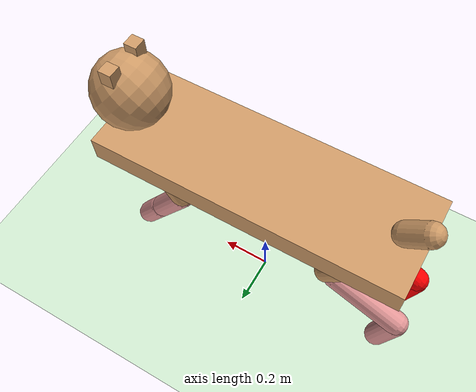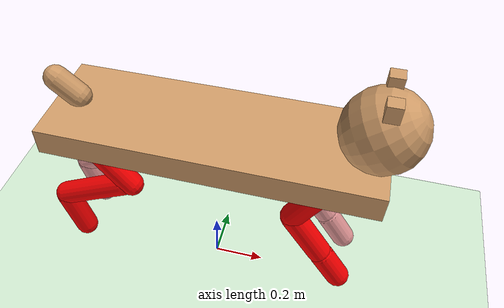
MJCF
<mujoco model="cheetah">
  <compiler angle="radian" coordinate="local" inertiafromgeom="true"/>
  <default>
    <joint armature=".1" damping=".01" limited="true" solimplimit="0 .8 .03" solreflimit=".02 1" stiffness="8"/>
    <geom conaffinity="0" condim="3" contype="1" friction=".4 .1 .1" rgba="0.8 0.6 .4 1" solimp="0.0 0.8 0.01" solref="0.02 1"/>
    <motor ctrllimited="true" ctrlrange="-1 1"/>
  </default>
  <size nstack="300000" nuser_geom="1"/>
  <option gravity="0 0 -9.81" timestep="0.01"/>
  <asset>
    <texture builtin="gradient" height="100" rgb1="1 1 1" rgb2="0 0 0" type="skybox" width="100"/>
    <texture builtin="flat" height="1278" mark="cross" markrgb="1 1 1" name="texgeom" random="0.01" rgb1="0.8 0.6 0.4" rgb2="0.8 0.6 0.4" type="cube" width="127"/>
    <texture builtin="checker" height="100" name="texplane" rgb1="0.8 0.8 0.8" rgb2="0.8 0.8 0.8" type="2d" width="100"/>
    <material name="MatPlane" reflectance="0.5" shininess="0" specular="1" texrepeat="60 60" texture="texplane"/>
    <material name="geom" texture="texgeom" texuniform="true"/>
  </asset>
  <worldbody>
    <geom conaffinity="1" condim="3" material="MatPlane" name="floor" pos="0 0 0" rgba="0.8 0.9 0.8 1" size="400 400 400" type="plane" friction=".8 .1 .1" /><!--friction=".9 .1 .1"-->
    <body name="torso" pos="0 0 .7">
      <light cutoff="100" diffuse="1 1 1" dir="-0 0.1 -1.3" directional="true" exponent="1" pos="0 0 1.3" specular=".1 .1 .1"/>
      <camera name="track" mode="trackcom" pos="0 -3 0.3" xyaxes="1 0 0 0 0 1"/>
      <joint armature="0" axis="1 0 0" damping="0" limited="false" name="rootx" pos="0 0 0" stiffness="0" type="slide"/>
      <joint armature="0" axis="0 0 1" damping="0" limited="false" name="rootz" pos="0 0 0" stiffness="0" type="slide"/>
      <joint armature="0" axis="0 1 0" damping="0" limited="false" name="rooty" pos="0 0 0" stiffness="0" type="hinge"/>
      <geom name="torso" size="0.6 0.2 0.05" type="box" mass="30"/>
      <geom axisangle="0 1 0 .87" name="head" pos=".55 0 .15" size="0.146 .15" type="sphere" mass="3"/>
      <geom axisangle="0 1 0 -.87" name="tail" pos="-.55 0 .1" size="0.046 .05" type="capsule" mass="1"/>
	<geom  name="earL" pos=".55 0.07 .29" size="0.025 0.025 0.03" type="box" mass="0.02"/>
	<geom  name="earR" pos=".55 -0.07 .29" size="0.025 0.025 0.03" type="box" mass="0.02"/>
      <body name="bthighL" pos="-.5 0.1 0">
        <joint axis="0 1 0" name="bthighL" pos="0 0 0" range="-.52 1.05" type="hinge" damping="6" stiffness="240" springref="0"/><!--  damping="6" stiffness="240"   -->
        <geom axisangle="0 1 0 -3.8" name="bthighL" pos=".1 0 -.13" size="0.046 .145" type="capsule" mass="3"/>
        <body name="bshinL" pos=".16 0 -.25">
          <joint axis="0 1 0"  name="bshinL" pos="0 0 0" range="-.785 .785" type="hinge" damping="4.5" stiffness="180" springref="0"/><!-- damping="4.5" stiffness="180"   -->
          <geom axisangle="0 1 0 -2.03" name="bshinL" pos="-.14 0 -.07" rgba="0.9 0.6 0.6 1" size="0.046 .15" type="capsule" mass="1"/>
          <body name="bfootL" pos="-.28 0 -.14">
            <joint axis="0 1 0"  name="bfootL" pos="0 0 0" range="-.4 .785"  type="hinge" damping="3" stiffness="120" springref="0"/><!--  damping="3" stiffness="120"  -->
            <geom axisangle="0 1 0 -.27" name="bfootL" pos=".03 0 -.097" rgba="0.9 0.6 0.6 1" size="0.046 .094" type="capsule" mass="0.5"/>
          </body>
        </body>
      </body>
      <body name="fthighL" pos=".45 0.1 0">
        <joint axis="0 1 0" name="fthighL" pos="0 0 0" range="-1 .7" type="hinge" damping="4.5" stiffness="180"  springref="0"/><!--  damping="4.5" stiffness="180"   -->
        <geom axisangle="0 1 0 .52" name="fthighL" pos="-.07 0 -.12" size="0.046 .133" type="capsule" mass="3"/>
        <body name="fshinL" pos="-.14 0 -.24">
          <joint axis="0 1 0"  name="fshinL" pos="0 0 0" range="-1.2 .87"  type="hinge"  damping="3" stiffness="120"   springref="0"/><!-- damping="3" stiffness="120"  -->
          <geom axisangle="0 1 0 -.6" name="fshinL" pos=".065 0 -.09" rgba="0.9 0.6 0.6 1" size="0.046 .106" type="capsule" mass="1"/>
          <body name="ffootL" pos=".13 0 -.18">
            <joint axis="0 1 0" name="ffootL" pos="0 0 0" range="-.5 .5"  type="hinge" damping="1.5"  stiffness="60"  springref="0"/><!-- damping="1.5"  stiffness="60"  -->
            <geom axisangle="0 1 0 -.6" name="ffootL" pos=".045 0 -.07" rgba="0.9 0.6 0.6 1" size="0.046 .07" type="capsule" mass="0.5"/>
          </body>
        </body>
      </body>
      <body name="bthighR" pos="-.5 -0.1 0">
        <joint axis="0 1 0"  name="bthighR" pos="0 0 0" range="-.52 1.05" type="hinge" damping="6" stiffness="240" springref="0"/><!-- damping="6" stiffness="240"  -->
        <geom axisangle="0 1 0 -3.8" name="bthighR" pos=".1 0 -.13" size="0.046 .145" type="capsule" rgba="1 0 0 1"  mass="3"/>
        <body name="bshinR" pos=".16 0 -.25">
          <joint axis="0 1 0" name="bshinR" pos="0 0 0" range="-.785 .785"  type="hinge" damping="4.5" stiffness="180"  springref="0"/><!-- damping="4.5" stiffness="180" -->
          <geom axisangle="0 1 0 -2.03" name="bshinR" pos="-.14 0 -.07" rgba="1 0 0 1"  size="0.046 .15" type="capsule" mass="1"/>
          <body name="bfootR" pos="-.28 0 -.14">
            <joint axis="0 1 0"  name="bfootR" pos="0 0 0" range="-.4 .785"  type="hinge"  damping="3" stiffness="120"  springref="0"/><!-- damping="3" stiffness="120"   -->
            <geom axisangle="0 1 0 -.27" name="bfootR" pos=".03 0 -.097" rgba="1 0 0 1"  size="0.046 .094" type="capsule" mass="0.5"/>
          </body>
        </body>
      </body>
      <body name="fthighR" pos=".45 -0.1 0">
        <joint axis="0 1 0"  name="fthighR" pos="0 0 0" range="-1 .7" type="hinge" damping="4.5" stiffness="180"  springref="0"/><!--damping="4.5" stiffness="180"   -->
        <geom axisangle="0 1 0 .52" name="fthighR" pos="-.07 0 -.12" size="0.046 .133" type="capsule" rgba="1 0 0 1"  mass="3"/>
        <body name="fshinR" pos="-.14 0 -.24">
          <joint axis="0 1 0"  name="fshinR" pos="0 0 0" range="-1.2 .87" type="hinge"  damping="3" stiffness="120"  springref="0"/><!--damping="3" stiffness="120"  -->
          <geom axisangle="0 1 0 -.6" name="fshinR" pos=".065 0 -.09" rgba="1 0 0 1"  size="0.046 .106" type="capsule" mass="1"/>
          <body name="ffootR" pos=".13 0 -.18">
            <joint axis="0 1 0"  name="ffootR" pos="0 0 0" range="-.5 .5"  type="hinge" damping="1.5" stiffness="60"  springref="0"/><!--damping="1.5" stiffness="60"  -->
            <geom axisangle="0 1 0 -.6" name="ffootR" pos=".045 0 -.07" rgba="1 0 0 1"  size="0.046 .07" type="capsule" mass="0.5"/>
          </body>
        </body>
      </body>
    </body>
  </worldbody>
  <actuator>
    <motor gear="85" joint="bthighL" name="bthighL"/>
    <motor gear="40" joint="bshinL" name="bshinL"/>
    <motor gear="20" joint="bfootL" name="bfootL"/>
    <motor gear="70" joint="fthighL" name="fthighL"/>
    <motor gear="40" joint="fshinL" name="fshinL"/>
    <motor gear="20" joint="ffootL" name="ffootL"/>
    <motor gear="85" joint="bthighR" name="bthighR"/>
    <motor gear="40" joint="bshinR" name="bshinR"/>
    <motor gear="20" joint="bfootR" name="bfootR"/>
    <motor gear="70" joint="fthighR" name="fthighR"/>
    <motor gear="40" joint="fshinR" name="fshinR"/>
    <motor gear="20" joint="ffootR" name="ffootR"/>
  </actuator>
</mujoco>
